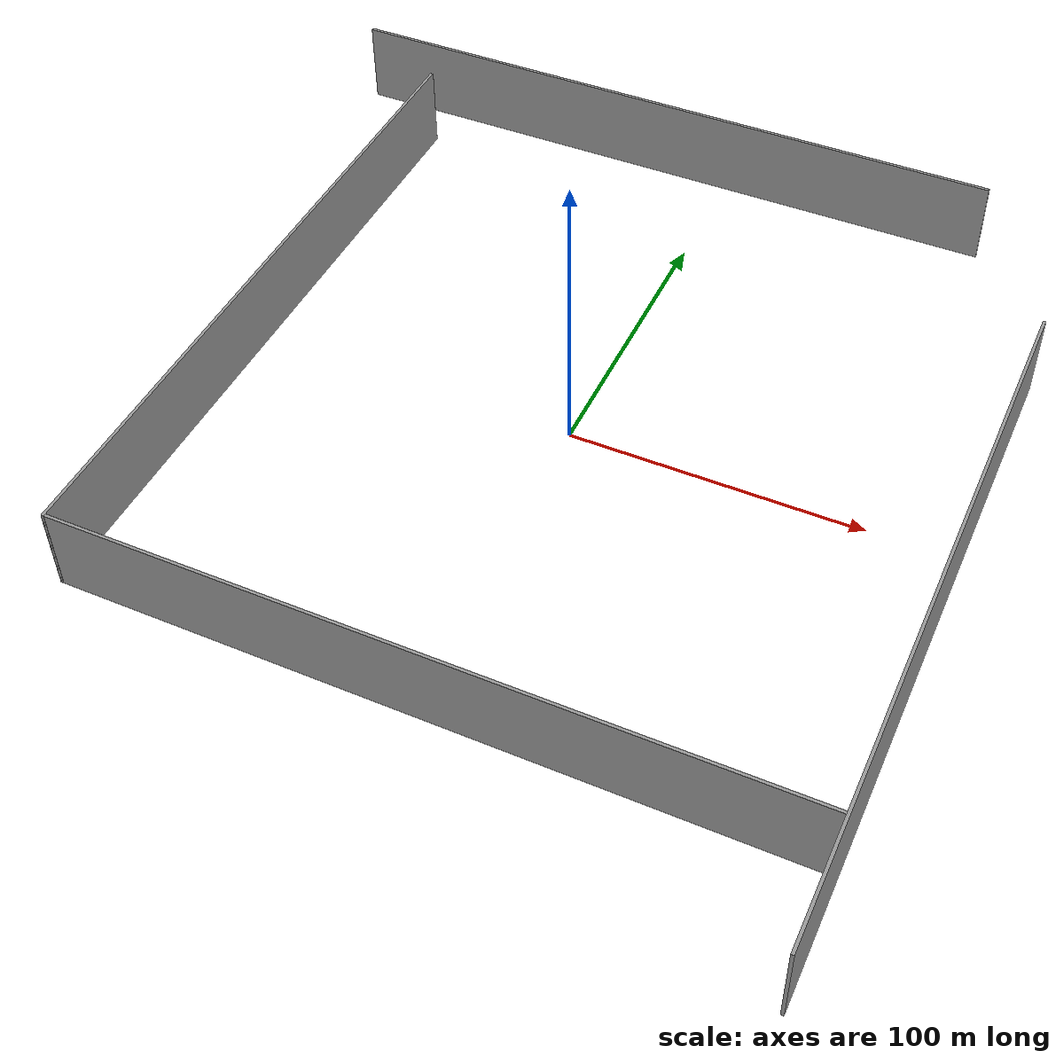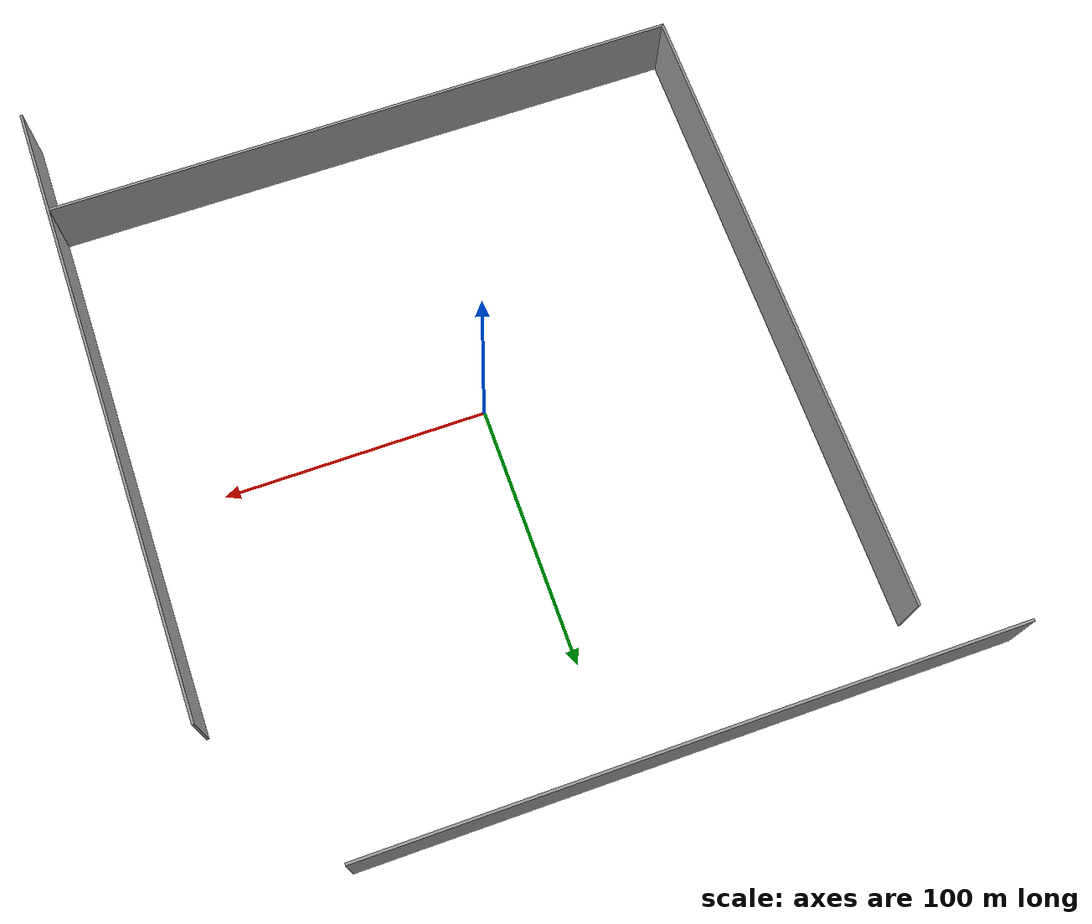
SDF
<?xml version='1.0'?>
<sdf version='1.7'>
  <model name='Task1-World'>
    <pose>-8.4755 -9.23847 0 0 -0 0</pose>
    <link name='Wall_19'>
      <collision name='Wall_19_Collision'>
        <geometry>
          <box>
            <size>243 1 30</size>
          </box>
        </geometry>
        <pose>0 0 15 0 -0 0</pose>
      </collision>
      <visual name='Wall_19_Visual'>
        <pose>0 0 15 0 -0 0</pose>
        <geometry>
          <box>
            <size>243 1 30</size>
          </box>
        </geometry>
        <material>
          <script>
            <uri>file://media/materials/scripts/gazebo.material</uri>
            <name>Gazebo/Grey</name>
          </script>
          <ambient>1 1 1 1</ambient>
        </material>
        <meta>
          <layer>0</layer>
        </meta>
      </visual>
      <pose>138.262 -29.7975 0 0 -0 -1.5708</pose>
    </link>
    <link name='Wall_21'>
      <collision name='Wall_21_Collision'>
        <geometry>
          <box>
            <size>243 1 30</size>
          </box>
        </geometry>
        <pose>0 0 15 0 -0 0</pose>
      </collision>
      <visual name='Wall_21_Visual'>
        <pose>0 0 15 0 -0 0</pose>
        <geometry>
          <box>
            <size>243 1 30</size>
          </box>
        </geometry>
        <material>
          <script>
            <uri>file://media/materials/scripts/gazebo.material</uri>
            <name>Gazebo/Grey</name>
          </script>
          <ambient>1 1 1 1</ambient>
        </material>
        <meta>
          <layer>0</layer>
        </meta>
      </visual>
      <pose>16.3503 -108.908 0 0 -0 3.14159</pose>
    </link>
    <link name='Wall_22'>
      <collision name='Wall_22_Collision'>
        <geometry>
          <box>
            <size>243.002 1 30</size>
          </box>
        </geometry>
        <pose>0 0 15 0 -0 0</pose>
      </collision>
      <visual name='Wall_22_Visual'>
        <pose>0 0 15 0 -0 0</pose>
        <geometry>
          <box>
            <size>243.002 1 30</size>
          </box>
        </geometry>
        <material>
          <script>
            <uri>file://media/materials/scripts/gazebo.material</uri>
            <name>Gazebo/Grey</name>
          </script>
          <ambient>1 1 1 1</ambient>
        </material>
        <meta>
          <layer>0</layer>
        </meta>
      </visual>
      <pose>-104.65 12.0925 0 0 -0 1.56699</pose>
    </link>
    <link name='Wall_24'>
      <collision name='Wall_24_Collision'>
        <geometry>
          <box>
            <size>243 1 30</size>
          </box>
        </geometry>
        <pose>0 0 15 0 -0 0</pose>
      </collision>
      <visual name='Wall_24_Visual'>
        <pose>0 0 15 0 -0 0</pose>
        <geometry>
          <box>
            <size>243 1 30</size>
          </box>
        </geometry>
        <material>
          <script>
            <uri>file://media/materials/scripts/gazebo.material</uri>
            <name>Gazebo/Grey</name>
          </script>
          <ambient>1 1 1 1</ambient>
        </material>
        <meta>
          <layer>0</layer>
        </meta>
      </visual>
      <pose>-17.2625 150.797 0 0 -0 0</pose>
    </link>
    <static>1</static>
  </model>
</sdf>
